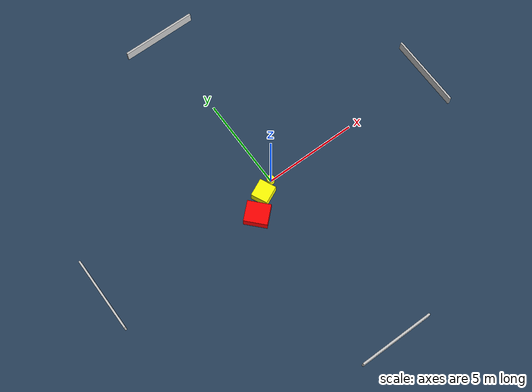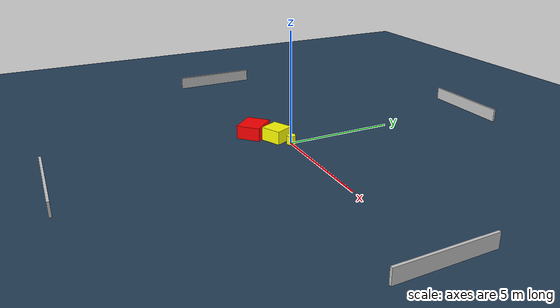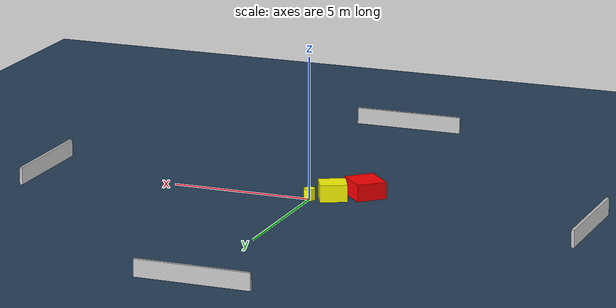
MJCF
<?xml version="1.0" ?>
<mujoco model="generated_environment">
  <option timestep="0.01" integrator="RK4" cone="elliptic"/>
  <default>
    <geom density="1"/>
  </default>
  <asset>
    <texture builtin="gradient" height="3072" name="skybox" rgb1="0.3 0.5 0.7" rgb2="0 0 0" type="skybox" width="512"/>
    <texture builtin="checker" height="300" name="groundplane" rgb1="0.2 0.3 0.4" rgb2="0.1 0.2 0.3" type="2d" width="300"/>
    <material name="groundplane" reflectance="0.2" texrepeat="5 5" texture="groundplane"/>
  </asset>
  <worldbody>
    <light dir="0 0 -1" directional="true" pos="0 0 1.5"/>
    <geom condim="3" friction="0.5 0.005 0.001" material="groundplane" name="floor" pos="0 0 0" size="0 0 0.05" type="plane"/>
    <body name="walls">
      <geom name="wall_1" condim="4" pos="-10.0 0.0 0.3" rgba="0.800000011920929 0.800000011920929 0.800000011920929 1.0" size="0.05 2.0 0.3" type="box"/>
      <geom name="wall_2" condim="4" pos="10.0 0.0 0.3" rgba="0.800000011920929 0.800000011920929 0.800000011920929 1.0" size="0.05 2.0 0.3" type="box"/>
      <geom name="wall_3" condim="4" pos="0.0 -10.0 0.3" rgba="0.800000011920929 0.800000011920929 0.800000011920929 1.0" size="2.0 0.05 0.3" type="box"/>
      <geom name="wall_4" condim="4" pos="0.0 10.0 0.3" rgba="0.800000011920929 0.800000011920929 0.800000011920929 1.0" size="2.0 0.05 0.3" type="box"/>
    </body>
    <body name="robot">
      <joint name="joint_x" type="slide" pos="0 0 0" axis="1 0 0"/>
      <joint name="joint_y" type="slide" pos="0 0 0" axis="0 1 0"/>
      <geom name="robot" type="cylinder" pos="0.0 0.0 0.2" size="0.2 0.2 0.0" mass="5.0" friction="1.0 0.005 0.0001" condim="4" rgba="1.0 1.0 0.0 1.0"/>
    </body>
    <body name="obstacle_1_movable">
      <geom name="obstacle_1_movable" condim="4" pos="-0.7115346003970865 -0.3652186125735317 0.3" euler="0 0 295.1481933574463" friction="0.0 0.005 0.001" rgba="1.0 1.0 0.0 1.0" size="0.44399912641062056 0.47716652675438254 0.3" type="box" mass="0.1"/>
      <joint type="free"/>
    </body>
    <body name="obstacle_2_static">
      <geom name="obstacle_2_static" condim="4" pos="-1.6279112546343462 -1.0990927548373082 0.3" euler="0 0 43.121371536443135" friction="0.0 0.005 0.001" rgba="1.0 0.0 0.0 1.0" size="0.5374731945619144 0.6063204860227339 0.3" type="box"/>
    </body>
  </worldbody>
  <actuator>
    <motor name="actuator_x" joint="joint_x" gear="1" ctrlrange="-1 1"/>
    <motor name="actuator_y" joint="joint_y" gear="1" ctrlrange="-1 1"/>
  </actuator>
</mujoco>
